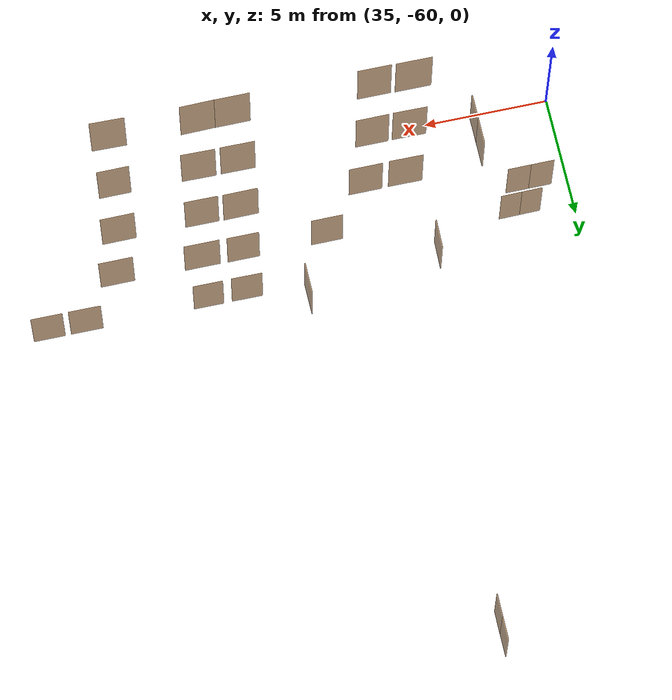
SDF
<sdf version="1.7">
 <world name="sim_world">
  <model name="Snull5">
   <pose>41.95467274017098 -38.68651756711344 0.0 0 0 1.5707963267948966</pose>
   <link name="right">
    <pose>0.4606093417466308 0 1.11 0 0 0</pose>
    <visual name="right_visual">
     <geometry><box><size>0.9112186834932616 0.03 2.2</size></box></geometry>
     <material>
      <ambient>0.5 0.25 0 0.6</ambient>
      <diffuse>0.5 0.25 0 0.6</diffuse>
      <pbr><metal><metalness>0.0</metalness></metal></pbr>
     </material>
    </visual>
    <collision name="right_collision">
     <geometry><box><size>0.9112186834932616 0.03 2.2</size></box></geometry>
     <surface><contact><collide_bitmask>0x02</collide_bitmask></contact></surface>
    </collision>
    <inertial>
     <mass>50.0</mass>
     <inertia><ixx>20.17041666666667</ixx><iyy>23.626331204779977</iyy><izz>3.463414538113304</izz></inertia>
    </inertial>
   </link>
   <joint name="right_joint" type="revolute">
    <parent>world</parent>
    <child>right</child>
    <axis><xyz>0 0 -1</xyz><limit><lower>0</lower><upper>1.57</upper></limit></axis>
    <pose>0.4606093417466308 0 0 0 0 0</pose>
   </joint>
   <link name="left">
    <pose>-0.4606093417466308 0 1.11 0 0 0</pose>
    <visual name="left_visual">
     <geometry><box><size>0.9112186834932616 0.03 2.2</size></box></geometry>
     <material>
      <ambient>0.5 0.25 0 0.6</ambient>
      <diffuse>0.5 0.25 0 0.6</diffuse>
      <pbr><metal><metalness>0.0</metalness></metal></pbr>
     </material>
    </visual>
    <collision name="left_collision">
     <geometry><box><size>0.9112186834932616 0.03 2.2</size></box></geometry>
     <surface><contact><collide_bitmask>0x02</collide_bitmask></contact></surface>
    </collision>
    <inertial>
     <mass>50.0</mass>
     <inertia><ixx>20.17041666666667</ixx><iyy>23.626331204779977</iyy><izz>3.463414538113304</izz></inertia>
    </inertial>
   </link>
   <joint name="left_joint" type="revolute">
    <parent>world</parent>
    <child>left</child>
    <axis><xyz>0 0 -1</xyz><limit><lower>-1.57</lower><upper>0</upper></limit></axis>
    <pose>-0.4606093417466308 0 0 0 0 0</pose>
   </joint>
   <plugin name="register_component" filename="libregister_component.so">
    <component name="Door">
     <v_max_door>0.5</v_max_door>
     <a_max_door>0.3</a_max_door>
     <a_nom_door>0.15</a_nom_door>
     <dx_min_door>0.01</dx_min_door>
     <f_max_door>500.0</f_max_door>
     <ros_interface>true</ros_interface>
     <door name="Snull5" type="DoubleSwingDoor" left_joint_name="left_joint" right_joint_name="right_joint"/>
    </component>
   </plugin>
  </model>
  <model name="Snull8">
   <pose>40.75631930702308 -54.42665123399168 0.0 0 0 1.550409697207399</pose>
   <link name="right">
    <pose>0 0 1.11 0 0 0</pose>
    <visual name="right_visual">
     <geometry><box><size>1.171367842129814 0.03 2.2</size></box></geometry>
     <material>
      <ambient>0.5 0.25 0 0.6</ambient>
      <diffuse>0.5 0.25 0 0.6</diffuse>
      <pbr><metal><metalness>0.0</metalness></metal></pbr>
     </material>
    </visual>
    <collision name="right_collision">
     <geometry><box><size>1.171367842129814 0.03 2.2</size></box></geometry>
     <surface><contact><collide_bitmask>0x02</collide_bitmask></contact></surface>
    </collision>
    <inertial>
     <mass>50.0</mass>
     <inertia><ixx>20.17041666666667</ixx><iyy>25.88376092323274</iyy><izz>5.720844256566069</izz></inertia>
    </inertial>
   </link>
   <joint name="right_joint" type="revolute">
    <parent>world</parent>
    <child>right</child>
    <axis><xyz>0 0 1</xyz><limit><lower>0</lower><upper>1.57</upper></limit></axis>
    <pose>0.590683921064907 0 0 0 0 0</pose>
   </joint>
   <plugin name="register_component" filename="libregister_component.so">
    <component name="Door">
     <v_max_door>0.5</v_max_door>
     <a_max_door>0.3</a_max_door>
     <a_nom_door>0.15</a_nom_door>
     <dx_min_door>0.01</dx_min_door>
     <f_max_door>500.0</f_max_door>
     <ros_interface>true</ros_interface>
     <door name="Snull8" type="SwingDoor" left_joint_name="empty_joint" right_joint_name="right_joint"/>
    </component>
   </plugin>
  </model>
  <model name="nueva">
   <pose>37.19622521748868 -55.42838740992417 0.0 0 0 -3.126962611458349</pose>
   <link name="right">
    <pose>0.4166428032143303 0 1.11 0 0 0</pose>
    <visual name="right_visual">
     <geometry><box><size>0.8232856064286606 0.03 2.2</size></box></geometry>
     <material>
      <ambient>0.5 0.25 0 0.6</ambient>
      <diffuse>0.5 0.25 0 0.6</diffuse>
      <pbr><metal><metalness>0.0</metalness></metal></pbr>
     </material>
    </visual>
    <collision name="right_collision">
     <geometry><box><size>0.8232856064286606 0.03 2.2</size></box></geometry>
     <surface><contact><collide_bitmask>0x02</collide_bitmask></contact></surface>
    </collision>
    <inertial>
     <mass>50.0</mass>
     <inertia><ixx>20.17041666666667</ixx><iyy>22.990829957302537</iyy><izz>2.827913290635864</izz></inertia>
    </inertial>
   </link>
   <joint name="right_joint" type="revolute">
    <parent>world</parent>
    <child>right</child>
    <axis><xyz>0 0 -1</xyz><limit><lower>0</lower><upper>1.57</upper></limit></axis>
    <pose>0.4166428032143303 0 0 0 0 0</pose>
   </joint>
   <link name="left">
    <pose>-0.4166428032143303 0 1.11 0 0 0</pose>
    <visual name="left_visual">
     <geometry><box><size>0.8232856064286606 0.03 2.2</size></box></geometry>
     <material>
      <ambient>0.5 0.25 0 0.6</ambient>
      <diffuse>0.5 0.25 0 0.6</diffuse>
      <pbr><metal><metalness>0.0</metalness></metal></pbr>
     </material>
    </visual>
    <collision name="left_collision">
     <geometry><box><size>0.8232856064286606 0.03 2.2</size></box></geometry>
     <surface><contact><collide_bitmask>0x02</collide_bitmask></contact></surface>
    </collision>
    <inertial>
     <mass>50.0</mass>
     <inertia><ixx>20.17041666666667</ixx><iyy>22.990829957302537</iyy><izz>2.827913290635864</izz></inertia>
    </inertial>
   </link>
   <joint name="left_joint" type="revolute">
    <parent>world</parent>
    <child>left</child>
    <axis><xyz>0 0 -1</xyz><limit><lower>-1.57</lower><upper>0</upper></limit></axis>
    <pose>-0.4166428032143303 0 0 0 0 0</pose>
   </joint>
   <plugin name="register_component" filename="libregister_component.so">
    <component name="Door">
     <v_max_door>0.5</v_max_door>
     <a_max_door>0.3</a_max_door>
     <a_nom_door>0.15</a_nom_door>
     <dx_min_door>0.01</dx_min_door>
     <f_max_door>500.0</f_max_door>
     <ros_interface>true</ros_interface>
     <door name="nueva" type="DoubleSwingDoor" left_joint_name="left_joint" right_joint_name="right_joint"/>
    </component>
   </plugin>
  </model>
  <model name="0null27">
   <pose>48.75335100623527 -52.64216107232197 4.0 0 0 -0.008093460433106648</pose>
   <link name="right">
    <pose>0 0 1.11 0 0 0</pose>
    <visual name="right_visual">
     <geometry><box><size>1.189456825434039 0.03 2.2</size></box></geometry>
     <material>
      <ambient>0.5 0.25 0 0.6</ambient>
      <diffuse>0.5 0.25 0 0.6</diffuse>
      <pbr><metal><metalness>0.0</metalness></metal></pbr>
     </material>
    </visual>
    <collision name="right_collision">
     <geometry><box><size>1.189456825434039 0.03 2.2</size></box></geometry>
     <surface><contact><collide_bitmask>0x02</collide_bitmask></contact></surface>
    </collision>
    <inertial>
     <mass>50.0</mass>
     <inertia><ixx>20.17041666666667</ixx><iyy>26.06169808154843</iyy><izz>5.898781414881757</izz></inertia>
    </inertial>
   </link>
   <joint name="right_joint" type="revolute">
    <parent>world</parent>
    <child>right</child>
    <axis><xyz>0 0 1</xyz><limit><lower>0</lower><upper>1.57</upper></limit></axis>
    <pose>0.5997284127170195 0 0 0 0 0</pose>
   </joint>
   <plugin name="register_component" filename="libregister_component.so">
    <component name="Door">
     <v_max_door>0.5</v_max_door>
     <a_max_door>0.3</a_max_door>
     <a_nom_door>0.15</a_nom_door>
     <dx_min_door>0.01</dx_min_door>
     <f_max_door>500.0</f_max_door>
     <ros_interface>true</ros_interface>
     <door name="0null27" type="SwingDoor" left_joint_name="empty_joint" right_joint_name="right_joint"/>
    </component>
   </plugin>
  </model>
  <model name="0null28">
   <pose>50.25034536833063 -52.64027554792216 4.0 0 0 3.136493275084232</pose>
   <link name="right">
    <pose>0 0 1.11 0 0 0</pose>
    <visual name="right_visual">
     <geometry><box><size>1.1541864392140333 0.03 2.2</size></box></geometry>
     <material>
      <ambient>0.5 0.25 0 0.6</ambient>
      <diffuse>0.5 0.25 0 0.6</diffuse>
      <pbr><metal><metalness>0.0</metalness></metal></pbr>
     </material>
    </visual>
    <collision name="right_collision">
     <geometry><box><size>1.1541864392140333 0.03 2.2</size></box></geometry>
     <surface><contact><collide_bitmask>0x02</collide_bitmask></contact></surface>
    </collision>
    <inertial>
     <mass>50.0</mass>
     <inertia><ixx>20.17041666666667</ixx><iyy>25.717276401939877</iyy><izz>5.554359735273206</izz></inertia>
    </inertial>
   </link>
   <joint name="right_joint" type="revolute">
    <parent>world</parent>
    <child>right</child>
    <axis><xyz>0 0 -1</xyz><limit><lower>0</lower><upper>1.57</upper></limit></axis>
    <pose>0.5820932196070167 0 0 0 0 0</pose>
   </joint>
   <plugin name="register_component" filename="libregister_component.so">
    <component name="Door">
     <v_max_door>0.5</v_max_door>
     <a_max_door>0.3</a_max_door>
     <a_nom_door>0.15</a_nom_door>
     <dx_min_door>0.01</dx_min_door>
     <f_max_door>500.0</f_max_door>
     <ros_interface>true</ros_interface>
     <door name="0null28" type="SwingDoor" left_joint_name="empty_joint" right_joint_name="right_joint"/>
    </component>
   </plugin>
  </model>
  <model name="0null29">
   <pose>54.99632229399242 -52.63359220400997 4.0 0 0 -0.004848699248225645</pose>
   <link name="right">
    <pose>0 0 1.11 0 0 0</pose>
    <visual name="right_visual">
     <geometry><box><size>1.245176610901063 0.03 2.2</size></box></geometry>
     <material>
      <ambient>0.5 0.25 0 0.6</ambient>
      <diffuse>0.5 0.25 0 0.6</diffuse>
      <pbr><metal><metalness>0.0</metalness></metal></pbr>
     </material>
    </visual>
    <collision name="right_collision">
     <geometry><box><size>1.245176610901063 0.03 2.2</size></box></geometry>
     <surface><contact><collide_bitmask>0x02</collide_bitmask></contact></surface>
    </collision>
    <inertial>
     <mass>50.0</mass>
     <inertia><ixx>20.17041666666667</ixx><iyy>26.626936634729407</iyy><izz>6.464019968062737</izz></inertia>
    </inertial>
   </link>
   <joint name="right_joint" type="revolute">
    <parent>world</parent>
    <child>right</child>
    <axis><xyz>0 0 1</xyz><limit><lower>0</lower><upper>1.57</upper></limit></axis>
    <pose>0.6275883054505315 0 0 0 0 0</pose>
   </joint>
   <plugin name="register_component" filename="libregister_component.so">
    <component name="Door">
     <v_max_door>0.5</v_max_door>
     <a_max_door>0.3</a_max_door>
     <a_nom_door>0.15</a_nom_door>
     <dx_min_door>0.01</dx_min_door>
     <f_max_door>500.0</f_max_door>
     <ros_interface>true</ros_interface>
     <door name="0null29" type="SwingDoor" left_joint_name="empty_joint" right_joint_name="right_joint"/>
    </component>
   </plugin>
  </model>
  <model name="0null30">
   <pose>56.44991225777542 -52.6336295411268 4.0 0 0 3.136553605109553</pose>
   <link name="right">
    <pose>0 0 1.11 0 0 0</pose>
    <visual name="right_visual">
     <geometry><box><size>1.2125820752857799 0.03 2.2</size></box></geometry>
     <material>
      <ambient>0.5 0.25 0 0.6</ambient>
      <diffuse>0.5 0.25 0 0.6</diffuse>
      <pbr><metal><metalness>0.0</metalness></metal></pbr>
     </material>
    </visual>
    <collision name="right_collision">
     <geometry><box><size>1.2125820752857799 0.03 2.2</size></box></geometry>
     <surface><contact><collide_bitmask>0x02</collide_bitmask></contact></surface>
    </collision>
    <inertial>
     <mass>50.0</mass>
     <inertia><ixx>20.17041666666667</ixx><iyy>26.293147038768208</iyy><izz>6.130230372101536</izz></inertia>
    </inertial>
   </link>
   <joint name="right_joint" type="revolute">
    <parent>world</parent>
    <child>right</child>
    <axis><xyz>0 0 -1</xyz><limit><lower>0</lower><upper>1.57</upper></limit></axis>
    <pose>0.61129103764289 0 0 0 0 0</pose>
   </joint>
   <plugin name="register_component" filename="libregister_component.so">
    <component name="Door">
     <v_max_door>0.5</v_max_door>
     <a_max_door>0.3</a_max_door>
     <a_nom_door>0.15</a_nom_door>
     <dx_min_door>0.01</dx_min_door>
     <f_max_door>500.0</f_max_door>
     <ros_interface>true</ros_interface>
     <door name="0null30" type="SwingDoor" left_joint_name="empty_joint" right_joint_name="right_joint"/>
    </component>
   </plugin>
  </model>
  <model name="0null31">
   <pose>46.4814061158197 -52.07805324272856 4.0 0 0 1.5821234363534646</pose>
   <link name="right">
    <pose>0 0 1.11 0 0 0</pose>
    <visual name="right_visual">
     <geometry><box><size>1.2261245512358774 0.03 2.2</size></box></geometry>
     <material>
      <ambient>0.5 0.25 0 0.6</ambient>
      <diffuse>0.5 0.25 0 0.6</diffuse>
      <pbr><metal><metalness>0.0</metalness></metal></pbr>
     </material>
    </visual>
    <collision name="right_collision">
     <geometry><box><size>1.2261245512358774 0.03 2.2</size></box></geometry>
     <surface><contact><collide_bitmask>0x02</collide_bitmask></contact></surface>
    </collision>
    <inertial>
     <mass>50.0</mass>
     <inertia><ixx>20.17041666666667</ixx><iyy>26.430755896430764</iyy><izz>6.267839229764091</izz></inertia>
    </inertial>
   </link>
   <joint name="right_joint" type="revolute">
    <parent>world</parent>
    <child>right</child>
    <axis><xyz>0 0 -1</xyz><limit><lower>0</lower><upper>1.57</upper></limit></axis>
    <pose>0.6180622756179387 0 0 0 0 0</pose>
   </joint>
   <plugin name="register_component" filename="libregister_component.so">
    <component name="Door">
     <v_max_door>0.5</v_max_door>
     <a_max_door>0.3</a_max_door>
     <a_nom_door>0.15</a_nom_door>
     <dx_min_door>0.01</dx_min_door>
     <f_max_door>500.0</f_max_door>
     <ros_interface>true</ros_interface>
     <door name="0null31" type="SwingDoor" left_joint_name="empty_joint" right_joint_name="right_joint"/>
    </component>
   </plugin>
  </model>
  <model name="0null32">
   <pose>38.716872643094476 -57.118956054213456 4.0 0 0 1.5707963267948966</pose>
   <link name="right">
    <pose>0.5170257252734931 0 1.11 0 0 0</pose>
    <visual name="right_visual">
     <geometry><box><size>1.0240514505469862 0.03 2.2</size></box></geometry>
     <material>
      <ambient>0.5 0.25 0 0.6</ambient>
      <diffuse>0.5 0.25 0 0.6</diffuse>
      <pbr><metal><metalness>0.0</metalness></metal></pbr>
     </material>
    </visual>
    <collision name="right_collision">
     <geometry><box><size>1.0240514505469862 0.03 2.2</size></box></geometry>
     <surface><contact><collide_bitmask>0x02</collide_bitmask></contact></surface>
    </collision>
    <inertial>
     <mass>50.0</mass>
     <inertia><ixx>20.17041666666667</ixx><iyy>24.53617238903078</iyy><izz>4.37325572236411</izz></inertia>
    </inertial>
   </link>
   <joint name="right_joint" type="revolute">
    <parent>world</parent>
    <child>right</child>
    <axis><xyz>0 0 1</xyz><limit><lower>0</lower><upper>1.57</upper></limit></axis>
    <pose>0.5170257252734931 0 0 0 0 0</pose>
   </joint>
   <link name="left">
    <pose>-0.5170257252734931 0 1.11 0 0 0</pose>
    <visual name="left_visual">
     <geometry><box><size>1.0240514505469862 0.03 2.2</size></box></geometry>
     <material>
      <ambient>0.5 0.25 0 0.6</ambient>
      <diffuse>0.5 0.25 0 0.6</diffuse>
      <pbr><metal><metalness>0.0</metalness></metal></pbr>
     </material>
    </visual>
    <collision name="left_collision">
     <geometry><box><size>1.0240514505469862 0.03 2.2</size></box></geometry>
     <surface><contact><collide_bitmask>0x02</collide_bitmask></contact></surface>
    </collision>
    <inertial>
     <mass>50.0</mass>
     <inertia><ixx>20.17041666666667</ixx><iyy>24.53617238903078</iyy><izz>4.37325572236411</izz></inertia>
    </inertial>
   </link>
   <joint name="left_joint" type="revolute">
    <parent>world</parent>
    <child>left</child>
    <axis><xyz>0 0 1</xyz><limit><lower>-1.57</lower><upper>0</upper></limit></axis>
    <pose>-0.5170257252734931 0 0 0 0 0</pose>
   </joint>
   <plugin name="register_component" filename="libregister_component.so">
    <component name="Door">
     <v_max_door>0.5</v_max_door>
     <a_max_door>0.3</a_max_door>
     <a_nom_door>0.15</a_nom_door>
     <dx_min_door>0.01</dx_min_door>
     <f_max_door>500.0</f_max_door>
     <ros_interface>true</ros_interface>
     <door name="0null32" type="DoubleSwingDoor" left_joint_name="left_joint" right_joint_name="right_joint"/>
    </component>
   </plugin>
  </model>
  <model name="0null177">
   <pose>37.18649889855503 -54.80007840794531 4.0 0 0 -3.1376136213155723</pose>
   <link name="right">
    <pose>0.4527534628040268 0 1.11 0 0 0</pose>
    <visual name="right_visual">
     <geometry><box><size>0.8955069256080536 0.03 2.2</size></box></geometry>
     <material>
      <ambient>0.5 0.25 0 0.6</ambient>
      <diffuse>0.5 0.25 0 0.6</diffuse>
      <pbr><metal><metalness>0.0</metalness></metal></pbr>
     </material>
    </visual>
    <collision name="right_collision">
     <geometry><box><size>0.8955069256080536 0.03 2.2</size></box></geometry>
     <surface><contact><collide_bitmask>0x02</collide_bitmask></contact></surface>
    </collision>
    <inertial>
     <mass>50.0</mass>
     <inertia><ixx>20.17041666666667</ixx><iyy>23.50805272421662</iyy><izz>3.3451360575499502</izz></inertia>
    </inertial>
   </link>
   <joint name="right_joint" type="revolute">
    <parent>world</parent>
    <child>right</child>
    <axis><xyz>0 0 -1</xyz><limit><lower>0</lower><upper>1.57</upper></limit></axis>
    <pose>0.4527534628040268 0 0 0 0 0</pose>
   </joint>
   <link name="left">
    <pose>-0.4527534628040268 0 1.11 0 0 0</pose>
    <visual name="left_visual">
     <geometry><box><size>0.8955069256080536 0.03 2.2</size></box></geometry>
     <material>
      <ambient>0.5 0.25 0 0.6</ambient>
      <diffuse>0.5 0.25 0 0.6</diffuse>
      <pbr><metal><metalness>0.0</metalness></metal></pbr>
     </material>
    </visual>
    <collision name="left_collision">
     <geometry><box><size>0.8955069256080536 0.03 2.2</size></box></geometry>
     <surface><contact><collide_bitmask>0x02</collide_bitmask></contact></surface>
    </collision>
    <inertial>
     <mass>50.0</mass>
     <inertia><ixx>20.17041666666667</ixx><iyy>23.50805272421662</iyy><izz>3.3451360575499502</izz></inertia>
    </inertial>
   </link>
   <joint name="left_joint" type="revolute">
    <parent>world</parent>
    <child>left</child>
    <axis><xyz>0 0 -1</xyz><limit><lower>-1.57</lower><upper>0</upper></limit></axis>
    <pose>-0.4527534628040268 0 0 0 0 0</pose>
   </joint>
   <plugin name="register_component" filename="libregister_component.so">
    <component name="Door">
     <v_max_door>0.5</v_max_door>
     <a_max_door>0.3</a_max_door>
     <a_nom_door>0.15</a_nom_door>
     <dx_min_door>0.01</dx_min_door>
     <f_max_door>500.0</f_max_door>
     <ros_interface>true</ros_interface>
     <door name="0null177" type="DoubleSwingDoor" left_joint_name="left_joint" right_joint_name="right_joint"/>
    </component>
   </plugin>
  </model>
  <model name="1null27">
   <pose>48.83506328641299 -52.62416458201094 8.0 0 0 0.0</pose>
   <link name="right">
    <pose>0 0 1.11 0 0 0</pose>
    <visual name="right_visual">
     <geometry><box><size>1.2076007168726457 0.03 2.2</size></box></geometry>
     <material>
      <ambient>0.5 0.25 0 0.6</ambient>
      <diffuse>0.5 0.25 0 0.6</diffuse>
      <pbr><metal><metalness>0.0</metalness></metal></pbr>
     </material>
    </visual>
    <collision name="right_collision">
     <geometry><box><size>1.2076007168726457 0.03 2.2</size></box></geometry>
     <surface><contact><collide_bitmask>0x02</collide_bitmask></contact></surface>
    </collision>
    <inertial>
     <mass>50.0</mass>
     <inertia><ixx>20.17041666666667</ixx><iyy>26.242914547463872</iyy><izz>6.079997880797199</izz></inertia>
    </inertial>
   </link>
   <joint name="right_joint" type="revolute">
    <parent>world</parent>
    <child>right</child>
    <axis><xyz>0 0 1</xyz><limit><lower>0</lower><upper>1.57</upper></limit></axis>
    <pose>0.6088003584363229 0 0 0 0 0</pose>
   </joint>
   <plugin name="register_component" filename="libregister_component.so">
    <component name="Door">
     <v_max_door>0.5</v_max_door>
     <a_max_door>0.3</a_max_door>
     <a_nom_door>0.15</a_nom_door>
     <dx_min_door>0.01</dx_min_door>
     <f_max_door>500.0</f_max_door>
     <ros_interface>true</ros_interface>
     <door name="1null27" type="SwingDoor" left_joint_name="empty_joint" right_joint_name="right_joint"/>
    </component>
   </plugin>
  </model>
  <model name="1ull28">
   <pose>50.38944479707274 -52.637120561550205 8.0 0 0 3.141592653589793</pose>
   <link name="right">
    <pose>0 0 1.11 0 0 0</pose>
    <visual name="right_visual">
     <geometry><box><size>1.3371605122652477 0.03 2.2</size></box></geometry>
     <material>
      <ambient>0.5 0.25 0 0.6</ambient>
      <diffuse>0.5 0.25 0 0.6</diffuse>
      <pbr><metal><metalness>0.0</metalness></metal></pbr>
     </material>
    </visual>
    <collision name="right_collision">
     <geometry><box><size>1.3371605122652477 0.03 2.2</size></box></geometry>
     <surface><contact><collide_bitmask>0x02</collide_bitmask></contact></surface>
    </collision>
    <inertial>
     <mass>50.0</mass>
     <inertia><ixx>20.17041666666667</ixx><iyy>27.616659314839417</iyy><izz>7.4537426481727485</izz></inertia>
    </inertial>
   </link>
   <joint name="right_joint" type="revolute">
    <parent>world</parent>
    <child>right</child>
    <axis><xyz>0 0 -1</xyz><limit><lower>0</lower><upper>1.57</upper></limit></axis>
    <pose>0.6735802561326238 0 0 0 0 0</pose>
   </joint>
   <plugin name="register_component" filename="libregister_component.so">
    <component name="Door">
     <v_max_door>0.5</v_max_door>
     <a_max_door>0.3</a_max_door>
     <a_nom_door>0.15</a_nom_door>
     <dx_min_door>0.01</dx_min_door>
     <f_max_door>500.0</f_max_door>
     <ros_interface>true</ros_interface>
     <door name="1ull28" type="SwingDoor" left_joint_name="empty_joint" right_joint_name="right_joint"/>
    </component>
   </plugin>
  </model>
  <model name="1null83">
   <pose>45.65799200985697 -52.64227308367244 8.0 0 0 0.0</pose>
   <link name="right">
    <pose>0 0 1.11 0 0 0</pose>
    <visual name="right_visual">
     <geometry><box><size>1.2004693275585276 0.03 2.2</size></box></geometry>
     <material>
      <ambient>0.5 0.25 0 0.6</ambient>
      <diffuse>0.5 0.25 0 0.6</diffuse>
      <pbr><metal><metalness>0.0</metalness></metal></pbr>
     </material>
    </visual>
    <collision name="right_collision">
     <geometry><box><size>1.2004693275585276 0.03 2.2</size></box></geometry>
     <surface><contact><collide_bitmask>0x02</collide_bitmask></contact></surface>
    </collision>
    <inertial>
     <mass>50.0</mass>
     <inertia><ixx>20.17041666666667</ixx><iyy>26.171360860036767</iyy><izz>6.008444193370098</izz></inertia>
    </inertial>
   </link>
   <joint name="right_joint" type="revolute">
    <parent>world</parent>
    <child>right</child>
    <axis><xyz>0 0 1</xyz><limit><lower>0</lower><upper>1.57</upper></limit></axis>
    <pose>0.6052346637792638 0 0 0 0 0</pose>
   </joint>
   <plugin name="register_component" filename="libregister_component.so">
    <component name="Door">
     <v_max_door>0.5</v_max_door>
     <a_max_door>0.3</a_max_door>
     <a_nom_door>0.15</a_nom_door>
     <dx_min_door>0.01</dx_min_door>
     <f_max_door>500.0</f_max_door>
     <ros_interface>true</ros_interface>
     <door name="1null83" type="SwingDoor" left_joint_name="empty_joint" right_joint_name="right_joint"/>
    </component>
   </plugin>
  </model>
  <model name="1null103">
   <pose>53.612216704626036 -52.64882574767573 8.0 0 0 -3.1396570230263103</pose>
   <link name="right">
    <pose>0 0 1.11 0 0 0</pose>
    <visual name="right_visual">
     <geometry><box><size>1.2823893829535207 0.03 2.2</size></box></geometry>
     <material>
      <ambient>0.5 0.25 0 0.6</ambient>
      <diffuse>0.5 0.25 0 0.6</diffuse>
      <pbr><metal><metalness>0.0</metalness></metal></pbr>
     </material>
    </visual>
    <collision name="right_collision">
     <geometry><box><size>1.2823893829535207 0.03 2.2</size></box></geometry>
     <surface><contact><collide_bitmask>0x02</collide_bitmask></contact></surface>
    </collision>
    <inertial>
     <mass>50.0</mass>
     <inertia><ixx>20.17041666666667</ixx><iyy>27.0188438729663</iyy><izz>6.855927206299631</izz></inertia>
    </inertial>
   </link>
   <joint name="right_joint" type="revolute">
    <parent>world</parent>
    <child>right</child>
    <axis><xyz>0 0 -1</xyz><limit><lower>0</lower><upper>1.57</upper></limit></axis>
    <pose>0.6461946914767603 0 0 0 0 0</pose>
   </joint>
   <plugin name="register_component" filename="libregister_component.so">
    <component name="Door">
     <v_max_door>0.5</v_max_door>
     <a_max_door>0.3</a_max_door>
     <a_nom_door>0.15</a_nom_door>
     <dx_min_door>0.01</dx_min_door>
     <f_max_door>500.0</f_max_door>
     <ros_interface>true</ros_interface>
     <door name="1null103" type="SwingDoor" left_joint_name="empty_joint" right_joint_name="right_joint"/>
    </component>
   </plugin>
  </model>
  <model name="2null27">
   <pose>48.8619086734122 -52.63857670910649 12.0 0 0 0.009766156046505905</pose>
   <link name="right">
    <pose>0 0 1.11 0 0 0</pose>
    <visual name="right_visual">
     <geometry><box><size>1.2898790374388203 0.03 2.2</size></box></geometry>
     <material>
      <ambient>0.5 0.25 0 0.6</ambient>
      <diffuse>0.5 0.25 0 0.6</diffuse>
      <pbr><metal><metalness>0.0</metalness></metal></pbr>
     </material>
    </visual>
    <collision name="right_collision">
     <geometry><box><size>1.2898790374388203 0.03 2.2</size></box></geometry>
     <surface><contact><collide_bitmask>0x02</collide_bitmask></contact></surface>
    </collision>
    <inertial>
     <mass>50.0</mass>
     <inertia><ixx>20.17041666666667</ixx><iyy>27.09911638010041</iyy><izz>6.93619971343374</izz></inertia>
    </inertial>
   </link>
   <joint name="right_joint" type="revolute">
    <parent>world</parent>
    <child>right</child>
    <axis><xyz>0 0 1</xyz><limit><lower>0</lower><upper>1.57</upper></limit></axis>
    <pose>0.6499395187194101 0 0 0 0 0</pose>
   </joint>
   <plugin name="register_component" filename="libregister_component.so">
    <component name="Door">
     <v_max_door>0.5</v_max_door>
     <a_max_door>0.3</a_max_door>
     <a_nom_door>0.15</a_nom_door>
     <dx_min_door>0.01</dx_min_door>
     <f_max_door>500.0</f_max_door>
     <ros_interface>true</ros_interface>
     <door name="2null27" type="SwingDoor" left_joint_name="empty_joint" right_joint_name="right_joint"/>
    </component>
   </plugin>
  </model>
  <model name="2null28">
   <pose>50.299219654258266 -52.64764962849566 12.0 0 0 3.137214345334562</pose>
   <link name="right">
    <pose>0 0 1.11 0 0 0</pose>
    <visual name="right_visual">
     <geometry><box><size>1.2350554313188702 0.03 2.2</size></box></geometry>
     <material>
      <ambient>0.5 0.25 0 0.6</ambient>
      <diffuse>0.5 0.25 0 0.6</diffuse>
      <pbr><metal><metalness>0.0</metalness></metal></pbr>
     </material>
    </visual>
    <collision name="right_collision">
     <geometry><box><size>1.2350554313188702 0.03 2.2</size></box></geometry>
     <surface><contact><collide_bitmask>0x02</collide_bitmask></contact></surface>
    </collision>
    <inertial>
     <mass>50.0</mass>
     <inertia><ixx>20.17041666666667</ixx><iyy>26.522341326792674</iyy><izz>6.3594246601260025</izz></inertia>
    </inertial>
   </link>
   <joint name="right_joint" type="revolute">
    <parent>world</parent>
    <child>right</child>
    <axis><xyz>0 0 -1</xyz><limit><lower>0</lower><upper>1.57</upper></limit></axis>
    <pose>0.6225277156594351 0 0 0 0 0</pose>
   </joint>
   <plugin name="register_component" filename="libregister_component.so">
    <component name="Door">
     <v_max_door>0.5</v_max_door>
     <a_max_door>0.3</a_max_door>
     <a_nom_door>0.15</a_nom_door>
     <dx_min_door>0.01</dx_min_door>
     <f_max_door>500.0</f_max_door>
     <ros_interface>true</ros_interface>
     <door name="2null28" type="SwingDoor" left_joint_name="empty_joint" right_joint_name="right_joint"/>
    </component>
   </plugin>
  </model>
  <model name="2null78">
   <pose>44.23548519583315 -52.63411492364556 12.0 0 0 0.0035772107379136407</pose>
   <link name="right">
    <pose>0 0 1.11 0 0 0</pose>
    <visual name="right_visual">
     <geometry><box><size>1.2320644753861043 0.03 2.2</size></box></geometry>
     <material>
      <ambient>0.5 0.25 0 0.6</ambient>
      <diffuse>0.5 0.25 0 0.6</diffuse>
      <pbr><metal><metalness>0.0</metalness></metal></pbr>
     </material>
    </visual>
    <collision name="right_collision">
     <geometry><box><size>1.2320644753861043 0.03 2.2</size></box></geometry>
     <surface><contact><collide_bitmask>0x02</collide_bitmask></contact></surface>
    </collision>
    <inertial>
     <mass>50.0</mass>
     <inertia><ixx>20.17041666666667</ixx><iyy>26.49159529795182</iyy><izz>6.328678631285152</izz></inertia>
    </inertial>
   </link>
   <joint name="right_joint" type="revolute">
    <parent>world</parent>
    <child>right</child>
    <axis><xyz>0 0 -1</xyz><limit><lower>0</lower><upper>1.57</upper></limit></axis>
    <pose>0.6210322376930522 0 0 0 0 0</pose>
   </joint>
   <plugin name="register_component" filename="libregister_component.so">
    <component name="Door">
     <v_max_door>0.5</v_max_door>
     <a_max_door>0.3</a_max_door>
     <a_nom_door>0.15</a_nom_door>
     <dx_min_door>0.01</dx_min_door>
     <f_max_door>500.0</f_max_door>
     <ros_interface>true</ros_interface>
     <door name="2null78" type="SwingDoor" left_joint_name="empty_joint" right_joint_name="right_joint"/>
    </component>
   </plugin>
  </model>
  <model name="2null96">
   <pose>53.370477541724185 -52.63799798379566 12.0 0 0 -3.134607658848167</pose>
   <link name="right">
    <pose>0 0 1.11 0 0 0</pose>
    <visual name="right_visual">
     <geometry><box><size>1.24616326551242 0.03 2.2</size></box></geometry>
     <material>
      <ambient>0.5 0.25 0 0.6</ambient>
      <diffuse>0.5 0.25 0 0.6</diffuse>
      <pbr><metal><metalness>0.0</metalness></metal></pbr>
     </material>
    </visual>
    <collision name="right_collision">
     <geometry><box><size>1.24616326551242 0.03 2.2</size></box></geometry>
     <surface><contact><collide_bitmask>0x02</collide_bitmask></contact></surface>
    </collision>
    <inertial>
     <mass>50.0</mass>
     <inertia><ixx>20.17041666666667</ixx><iyy>26.63717868463575</iyy><izz>6.4742620179690755</izz></inertia>
    </inertial>
   </link>
   <joint name="right_joint" type="revolute">
    <parent>world</parent>
    <child>right</child>
    <axis><xyz>0 0 -1</xyz><limit><lower>0</lower><upper>1.57</upper></limit></axis>
    <pose>0.62808163275621 0 0 0 0 0</pose>
   </joint>
   <plugin name="register_component" filename="libregister_component.so">
    <component name="Door">
     <v_max_door>0.5</v_max_door>
     <a_max_door>0.3</a_max_door>
     <a_nom_door>0.15</a_nom_door>
     <dx_min_door>0.01</dx_min_door>
     <f_max_door>500.0</f_max_door>
     <ros_interface>true</ros_interface>
     <door name="2null96" type="SwingDoor" left_joint_name="empty_joint" right_joint_name="right_joint"/>
    </component>
   </plugin>
  </model>
  <model name="null">
   <pose>42.748497181047654 -52.64626815517302 12.0 0 0 -0.008013498842429856</pose>
   <link name="right">
    <pose>0 0 1.11 0 0 0</pose>
    <visual name="right_visual">
     <geometry><box><size>1.2573371109164277 0.03 2.2</size></box></geometry>
     <material>
      <ambient>0.5 0.25 0 0.6</ambient>
      <diffuse>0.5 0.25 0 0.6</diffuse>
      <pbr><metal><metalness>0.0</metalness></metal></pbr>
     </material>
    </visual>
    <collision name="right_collision">
     <geometry><box><size>1.2573371109164277 0.03 2.2</size></box></geometry>
     <surface><contact><collide_bitmask>0x02</collide_bitmask></contact></surface>
    </collision>
    <inertial>
     <mass>50.0</mass>
     <inertia><ixx>20.17041666666667</ixx><iyy>26.75373587703196</iyy><izz>6.590819210365289</izz></inertia>
    </inertial>
   </link>
   <joint name="right_joint" type="revolute">
    <parent>world</parent>
    <child>right</child>
    <axis><xyz>0 0 1</xyz><limit><lower>0</lower><upper>1.57</upper></limit></axis>
    <pose>0.6336685554582139 0 0 0 0 0</pose>
   </joint>
   <plugin name="register_component" filename="libregister_component.so">
    <component name="Door">
     <v_max_door>0.5</v_max_door>
     <a_max_door>0.3</a_max_door>
     <a_nom_door>0.15</a_nom_door>
     <dx_min_door>0.01</dx_min_door>
     <f_max_door>500.0</f_max_door>
     <ros_interface>true</ros_interface>
     <door name="null" type="SwingDoor" left_joint_name="empty_joint" right_joint_name="right_joint"/>
    </component>
   </plugin>
  </model>
  <model name="wnullm27">
   <pose>42.685344602751265 -52.6937447005556 16.0 0 0 -0.010122908787059891</pose>
   <link name="right">
    <pose>0 0 1.11 0 0 0</pose>
    <visual name="right_visual">
     <geometry><box><size>1.2264638184779353 0.03 2.2</size></box></geometry>
     <material>
      <ambient>0.5 0.25 0 0.6</ambient>
      <diffuse>0.5 0.25 0 0.6</diffuse>
      <pbr><metal><metalness>0.0</metalness></metal></pbr>
     </material>
    </visual>
    <collision name="right_collision">
     <geometry><box><size>1.2264638184779353 0.03 2.2</size></box></geometry>
     <surface><contact><collide_bitmask>0x02</collide_bitmask></contact></surface>
    </collision>
    <inertial>
     <mass>50.0</mass>
     <inertia><ixx>20.17041666666667</ixx><iyy>26.43422290848116</iyy><izz>6.271306241814491</izz></inertia>
    </inertial>
   </link>
   <joint name="right_joint" type="revolute">
    <parent>world</parent>
    <child>right</child>
    <axis><xyz>0 0 1</xyz><limit><lower>0</lower><upper>1.57</upper></limit></axis>
    <pose>0.6182319092389676 0 0 0 0 0</pose>
   </joint>
   <plugin name="register_component" filename="libregister_component.so">
    <component name="Door">
     <v_max_door>0.5</v_max_door>
     <a_max_door>0.3</a_max_door>
     <a_nom_door>0.15</a_nom_door>
     <dx_min_door>0.01</dx_min_door>
     <f_max_door>500.0</f_max_door>
     <ros_interface>true</ros_interface>
     <door name="wnullm27" type="SwingDoor" left_joint_name="empty_joint" right_joint_name="right_joint"/>
    </component>
   </plugin>
  </model>
  <model name="wnullm28">
   <pose>44.035790696668 -52.69058469808414 16.0 0 0 -3.1397053450161474</pose>
   <link name="right">
    <pose>0 0 1.11 0 0 0</pose>
    <visual name="right_visual">
     <geometry><box><size>1.183636348575269 0.03 2.2</size></box></geometry>
     <material>
      <ambient>0.5 0.25 0 0.6</ambient>
      <diffuse>0.5 0.25 0 0.6</diffuse>
      <pbr><metal><metalness>0.0</metalness></metal></pbr>
     </material>
    </visual>
    <collision name="right_collision">
     <geometry><box><size>1.183636348575269 0.03 2.2</size></box></geometry>
     <surface><contact><collide_bitmask>0x02</collide_bitmask></contact></surface>
    </collision>
    <inertial>
     <mass>50.0</mass>
     <inertia><ixx>20.17041666666667</ixx><iyy>26.004145856952487</iyy><izz>5.841229190285816</izz></inertia>
    </inertial>
   </link>
   <joint name="right_joint" type="revolute">
    <parent>world</parent>
    <child>right</child>
    <axis><xyz>0 0 -1</xyz><limit><lower>0</lower><upper>1.57</upper></limit></axis>
    <pose>0.5968181742876345 0 0 0 0 0</pose>
   </joint>
   <plugin name="register_component" filename="libregister_component.so">
    <component name="Door">
     <v_max_door>0.5</v_max_door>
     <a_max_door>0.3</a_max_door>
     <a_nom_door>0.15</a_nom_door>
     <dx_min_door>0.01</dx_min_door>
     <f_max_door>500.0</f_max_door>
     <ros_interface>true</ros_interface>
     <door name="wnullm28" type="SwingDoor" left_joint_name="empty_joint" right_joint_name="right_joint"/>
    </component>
   </plugin>
  </model>
  <model name="wnullm29">
   <pose>48.88668595657761 -52.69555834080015 16.0 0 0 -0.005842042627713092</pose>
   <link name="right">
    <pose>0 0 1.11 0 0 0</pose>
    <visual name="right_visual">
     <geometry><box><size>1.2378264767344263 0.03 2.2</size></box></geometry>
     <material>
      <ambient>0.5 0.25 0 0.6</ambient>
      <diffuse>0.5 0.25 0 0.6</diffuse>
      <pbr><metal><metalness>0.0</metalness></metal></pbr>
     </material>
    </visual>
    <collision name="right_collision">
     <geometry><box><size>1.2378264767344263 0.03 2.2</size></box></geometry>
     <surface><contact><collide_bitmask>0x02</collide_bitmask></contact></surface>
    </collision>
    <inertial>
     <mass>50.0</mass>
     <inertia><ixx>20.17041666666667</ixx><iyy>26.550893277103185</iyy><izz>6.387976610436513</izz></inertia>
    </inertial>
   </link>
   <joint name="right_joint" type="revolute">
    <parent>world</parent>
    <child>right</child>
    <axis><xyz>0 0 1</xyz><limit><lower>0</lower><upper>1.57</upper></limit></axis>
    <pose>0.6239132383672131 0 0 0 0 0</pose>
   </joint>
   <plugin name="register_component" filename="libregister_component.so">
    <component name="Door">
     <v_max_door>0.5</v_max_door>
     <a_max_door>0.3</a_max_door>
     <a_nom_door>0.15</a_nom_door>
     <dx_min_door>0.01</dx_min_door>
     <f_max_door>500.0</f_max_door>
     <ros_interface>true</ros_interface>
     <door name="wnullm29" type="SwingDoor" left_joint_name="empty_joint" right_joint_name="right_joint"/>
    </component>
   </plugin>
  </model>
  <model name="wnullm30">
   <pose>50.29896086711881 -52.70124672772943 16.0 0 0 3.1266088122252</pose>
   <link name="right">
    <pose>0 0 1.11 0 0 0</pose>
    <visual name="right_visual">
     <geometry><box><size>1.2278916304568213 0.03 2.2</size></box></geometry>
     <material>
      <ambient>0.5 0.25 0 0.6</ambient>
      <diffuse>0.5 0.25 0 0.6</diffuse>
      <pbr><metal><metalness>0.0</metalness></metal></pbr>
     </material>
    </visual>
    <collision name="right_collision">
     <geometry><box><size>1.2278916304568213 0.03 2.2</size></box></geometry>
     <surface><contact><collide_bitmask>0x02</collide_bitmask></contact></surface>
    </collision>
    <inertial>
     <mass>50.0</mass>
     <inertia><ixx>20.17041666666667</ixx><iyy>26.44882440060797</iyy><izz>6.285907733941295</izz></inertia>
    </inertial>
   </link>
   <joint name="right_joint" type="revolute">
    <parent>world</parent>
    <child>right</child>
    <axis><xyz>0 0 -1</xyz><limit><lower>0</lower><upper>1.57</upper></limit></axis>
    <pose>0.6189458152284106 0 0 0 0 0</pose>
   </joint>
   <plugin name="register_component" filename="libregister_component.so">
    <component name="Door">
     <v_max_door>0.5</v_max_door>
     <a_max_door>0.3</a_max_door>
     <a_nom_door>0.15</a_nom_door>
     <dx_min_door>0.01</dx_min_door>
     <f_max_door>500.0</f_max_door>
     <ros_interface>true</ros_interface>
     <door name="wnullm30" type="SwingDoor" left_joint_name="empty_joint" right_joint_name="right_joint"/>
    </component>
   </plugin>
  </model>
  <model name="wnullm31">
   <pose>53.327549544443926 -52.6957263562941 16.0 0 0 -3.138065896646193</pose>
   <link name="right">
    <pose>0 0 1.11 0 0 0</pose>
    <visual name="right_visual">
     <geometry><box><size>1.1474175984856432 0.03 2.2</size></box></geometry>
     <material>
      <ambient>0.5 0.25 0 0.6</ambient>
      <diffuse>0.5 0.25 0 0.6</diffuse>
      <pbr><metal><metalness>0.0</metalness></metal></pbr>
     </material>
    </visual>
    <collision name="right_collision">
     <geometry><box><size>1.1474175984856432 0.03 2.2</size></box></geometry>
     <surface><contact><collide_bitmask>0x02</collide_bitmask></contact></surface>
    </collision>
    <inertial>
     <mass>50.0</mass>
     <inertia><ixx>20.17041666666667</ixx><iyy>25.65236310547734</iyy><izz>5.48944643881067</izz></inertia>
    </inertial>
   </link>
   <joint name="right_joint" type="revolute">
    <parent>world</parent>
    <child>right</child>
    <axis><xyz>0 0 -1</xyz><limit><lower>0</lower><upper>1.57</upper></limit></axis>
    <pose>0.5787087992428216 0 0 0 0 0</pose>
   </joint>
   <plugin name="register_component" filename="libregister_component.so">
    <component name="Door">
     <v_max_door>0.5</v_max_door>
     <a_max_door>0.3</a_max_door>
     <a_nom_door>0.15</a_nom_door>
     <dx_min_door>0.01</dx_min_door>
     <f_max_door>500.0</f_max_door>
     <ros_interface>true</ros_interface>
     <door name="wnullm31" type="SwingDoor" left_joint_name="empty_joint" right_joint_name="right_joint"/>
    </component>
   </plugin>
  </model>
  <model name="nullm27">
   <pose>42.6334751896264 -52.69333896028196 20.0 0 0 -0.0002303086094719948</pose>
   <link name="right">
    <pose>0 0 1.11 0 0 0</pose>
    <visual name="right_visual">
     <geometry><box><size>1.2781105613213628 0.03 2.2</size></box></geometry>
     <material>
      <ambient>0.5 0.25 0 0.6</ambient>
      <diffuse>0.5 0.25 0 0.6</diffuse>
      <pbr><metal><metalness>0.0</metalness></metal></pbr>
     </material>
    </visual>
    <collision name="right_collision">
     <geometry><box><size>1.2781105613213628 0.03 2.2</size></box></geometry>
     <surface><contact><collide_bitmask>0x02</collide_bitmask></contact></surface>
    </collision>
    <inertial>
     <mass>50.0</mass>
     <inertia><ixx>20.17041666666667</ixx><iyy>26.97319419567171</iyy><izz>6.810277529005038</izz></inertia>
    </inertial>
   </link>
   <joint name="right_joint" type="revolute">
    <parent>world</parent>
    <child>right</child>
    <axis><xyz>0 0 1</xyz><limit><lower>0</lower><upper>1.57</upper></limit></axis>
    <pose>0.6440552806606814 0 0 0 0 0</pose>
   </joint>
   <plugin name="register_component" filename="libregister_component.so">
    <component name="Door">
     <v_max_door>0.5</v_max_door>
     <a_max_door>0.3</a_max_door>
     <a_nom_door>0.15</a_nom_door>
     <dx_min_door>0.01</dx_min_door>
     <f_max_door>500.0</f_max_door>
     <ros_interface>true</ros_interface>
     <door name="nullm27" type="SwingDoor" left_joint_name="empty_joint" right_joint_name="right_joint"/>
    </component>
   </plugin>
  </model>
  <model name="nullm28">
   <pose>44.015577799412966 -52.70539062743114 20.0 0 0 3.141362344980318</pose>
   <link name="right">
    <pose>0 0 1.11 0 0 0</pose>
    <visual name="right_visual">
     <geometry><box><size>1.1763118123633582 0.03 2.2</size></box></geometry>
     <material>
      <ambient>0.5 0.25 0 0.6</ambient>
      <diffuse>0.5 0.25 0 0.6</diffuse>
      <pbr><metal><metalness>0.0</metalness></metal></pbr>
     </material>
    </visual>
    <collision name="right_collision">
     <geometry><box><size>1.1763118123633582 0.03 2.2</size></box></geometry>
     <surface><contact><collide_bitmask>0x02</collide_bitmask></contact></surface>
    </collision>
    <inertial>
     <mass>50.0</mass>
     <inertia><ixx>20.17041666666667</ixx><iyy>25.93212283293987</iyy><izz>5.769206166273202</izz></inertia>
    </inertial>
   </link>
   <joint name="right_joint" type="revolute">
    <parent>world</parent>
    <child>right</child>
    <axis><xyz>0 0 -1</xyz><limit><lower>0</lower><upper>1.57</upper></limit></axis>
    <pose>0.5931559061816791 0 0 0 0 0</pose>
   </joint>
   <plugin name="register_component" filename="libregister_component.so">
    <component name="Door">
     <v_max_door>0.5</v_max_door>
     <a_max_door>0.3</a_max_door>
     <a_nom_door>0.15</a_nom_door>
     <dx_min_door>0.01</dx_min_door>
     <f_max_door>500.0</f_max_door>
     <ros_interface>true</ros_interface>
     <door name="nullm28" type="SwingDoor" left_joint_name="empty_joint" right_joint_name="right_joint"/>
    </component>
   </plugin>
  </model>
  <model name="nullm29">
   <pose>49.00157685290769 -52.71171112669981 20.0 0 0 0.002849763785956872</pose>
   <link name="right">
    <pose>0 0 1.11 0 0 0</pose>
    <visual name="right_visual">
     <geometry><box><size>1.2360810819518582 0.03 2.2</size></box></geometry>
     <material>
      <ambient>0.5 0.25 0 0.6</ambient>
      <diffuse>0.5 0.25 0 0.6</diffuse>
      <pbr><metal><metalness>0.0</metalness></metal></pbr>
     </material>
    </visual>
    <collision name="right_collision">
     <geometry><box><size>1.2360810819518582 0.03 2.2</size></box></geometry>
     <surface><contact><collide_bitmask>0x02</collide_bitmask></contact></surface>
    </collision>
    <inertial>
     <mass>50.0</mass>
     <inertia><ixx>20.17041666666667</ixx><iyy>26.532901838163657</iyy><izz>6.369985171496985</izz></inertia>
    </inertial>
   </link>
   <joint name="right_joint" type="revolute">
    <parent>world</parent>
    <child>right</child>
    <axis><xyz>0 0 1</xyz><limit><lower>0</lower><upper>1.57</upper></limit></axis>
    <pose>0.6230405409759291 0 0 0 0 0</pose>
   </joint>
   <plugin name="register_component" filename="libregister_component.so">
    <component name="Door">
     <v_max_door>0.5</v_max_door>
     <a_max_door>0.3</a_max_door>
     <a_nom_door>0.15</a_nom_door>
     <dx_min_door>0.01</dx_min_door>
     <f_max_door>500.0</f_max_door>
     <ros_interface>true</ros_interface>
     <door name="nullm29" type="SwingDoor" left_joint_name="empty_joint" right_joint_name="right_joint"/>
    </component>
   </plugin>
  </model>
  <model name="nullm30">
   <pose>50.22360283317444 -52.70159337955889 20.0 0 0 -3.121773286965903</pose>
   <link name="right">
    <pose>0 0 1.11 0 0 0</pose>
    <visual name="right_visual">
     <geometry><box><size>1.218850054130833 0.03 2.2</size></box></geometry>
     <material>
      <ambient>0.5 0.25 0 0.6</ambient>
      <diffuse>0.5 0.25 0 0.6</diffuse>
      <pbr><metal><metalness>0.0</metalness></metal></pbr>
     </material>
    </visual>
    <collision name="right_collision">
     <geometry><box><size>1.218850054130833 0.03 2.2</size></box></geometry>
     <surface><contact><collide_bitmask>0x02</collide_bitmask></contact></surface>
    </collision>
    <inertial>
     <mass>50.0</mass>
     <inertia><ixx>20.17041666666667</ixx><iyy>26.35664772689473</iyy><izz>6.1937310602280595</izz></inertia>
    </inertial>
   </link>
   <joint name="right_joint" type="revolute">
    <parent>world</parent>
    <child>right</child>
    <axis><xyz>0 0 -1</xyz><limit><lower>0</lower><upper>1.57</upper></limit></axis>
    <pose>0.6144250270654165 0 0 0 0 0</pose>
   </joint>
   <plugin name="register_component" filename="libregister_component.so">
    <component name="Door">
     <v_max_door>0.5</v_max_door>
     <a_max_door>0.3</a_max_door>
     <a_nom_door>0.15</a_nom_door>
     <dx_min_door>0.01</dx_min_door>
     <f_max_door>500.0</f_max_door>
     <ros_interface>true</ros_interface>
     <door name="nullm30" type="SwingDoor" left_joint_name="empty_joint" right_joint_name="right_joint"/>
    </component>
   </plugin>
  </model>
  <model name="nullm31">
   <pose>53.339296251655036 -52.72906739088243 20.0 0 0 3.121284004332635</pose>
   <link name="right">
    <pose>0 0 1.11 0 0 0</pose>
    <visual name="right_visual">
     <geometry><box><size>1.21709588664421 0.03 2.2</size></box></geometry>
     <material>
      <ambient>0.5 0.25 0 0.6</ambient>
      <diffuse>0.5 0.25 0 0.6</diffuse>
      <pbr><metal><metalness>0.0</metalness></metal></pbr>
     </material>
    </visual>
    <collision name="right_collision">
     <geometry><box><size>1.21709588664421 0.03 2.2</size></box></geometry>
     <surface><contact><collide_bitmask>0x02</collide_bitmask></contact></surface>
    </collision>
    <inertial>
     <mass>50.0</mass>
     <inertia><ixx>20.17041666666667</ixx><iyy>26.338843322026072</iyy><izz>6.1759266553594</izz></inertia>
    </inertial>
   </link>
   <joint name="right_joint" type="revolute">
    <parent>world</parent>
    <child>right</child>
    <axis><xyz>0 0 -1</xyz><limit><lower>0</lower><upper>1.57</upper></limit></axis>
    <pose>0.613547943322105 0 0 0 0 0</pose>
   </joint>
   <plugin name="register_component" filename="libregister_component.so">
    <component name="Door">
     <v_max_door>0.5</v_max_door>
     <a_max_door>0.3</a_max_door>
     <a_nom_door>0.15</a_nom_door>
     <dx_min_door>0.01</dx_min_door>
     <f_max_door>500.0</f_max_door>
     <ros_interface>true</ros_interface>
     <door name="nullm31" type="SwingDoor" left_joint_name="empty_joint" right_joint_name="right_joint"/>
    </component>
   </plugin>
  </model>
 </world>
</sdf>
